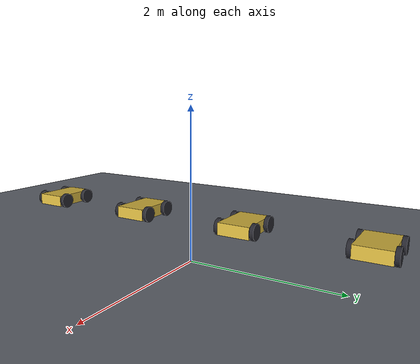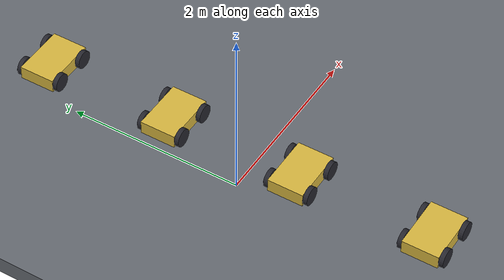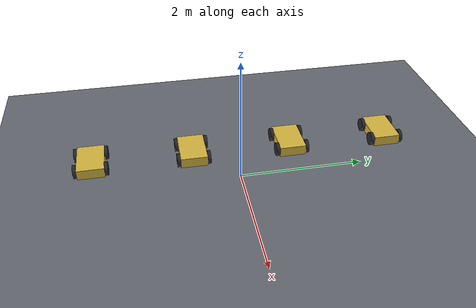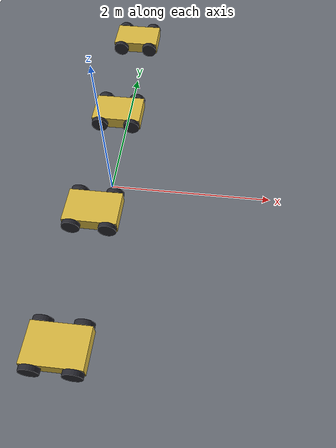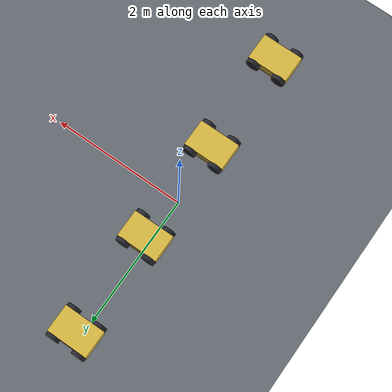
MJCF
<mujoco model="ladder0_rung11_mujoco">

  <!-- Only gravity and the timestep are set from the contract.  Everything
       else is MuJoCo's default, on purpose: this arm is the un-tuned
       reference for the solver OmniSim runs underneath. -->
  <option timestep="0.004" gravity="0 0 -9.81"/>

  <default>
    <!-- sliding / torsional / rolling.  condim defaults to 3, so only the
         first component is in force; the rest are declared for the record. -->
    <geom friction="1.0 0.005 0.0001"/>
  </default>

  <worldbody>
    <!-- Floor slab: full extents 25.200000000000003 x 7.5 x 0.2 m centred at z=0.4,
         so its top surface is at z=0.5.  Deliberately NOT at z=0. -->
    <geom name="floor" type="box" size="12.600000000000001 3.75 0.1" pos="0 0 0.4"
          rgba="0.4 0.42 0.45 1"/>

    <!-- r00: lane y = -2.250 m, commanded 2.0 rad/s -->
    <body name="r00_chassis" pos="0 -2.25 0.6">
      <freejoint name="r00_chassis_free"/>
      <geom name="r00_chassis_geom" type="box" size="0.3 0.2 0.075"
            mass="5.0" rgba="0.85 0.72 0.25 1"/>

      <body name="r00_fl" pos="0.2 0.225 0">
        <joint name="r00_fl_joint" type="hinge" axis="0 1 0"/>
        <geom name="r00_fl_geom" type="cylinder"
              fromto="0 -0.025 0  0 0.025 0" size="0.1" mass="0.5"
              rgba="0.15 0.15 0.18 1"/>
      </body>

      <body name="r00_fr" pos="0.2 -0.225 0">
        <joint name="r00_fr_joint" type="hinge" axis="0 1 0"/>
        <geom name="r00_fr_geom" type="cylinder"
              fromto="0 -0.025 0  0 0.025 0" size="0.1" mass="0.5"
              rgba="0.15 0.15 0.18 1"/>
      </body>

      <body name="r00_rl" pos="-0.2 0.225 0">
        <joint name="r00_rl_joint" type="hinge" axis="0 1 0"/>
        <geom name="r00_rl_geom" type="cylinder"
              fromto="0 -0.025 0  0 0.025 0" size="0.1" mass="0.5"
              rgba="0.15 0.15 0.18 1"/>
      </body>

      <body name="r00_rr" pos="-0.2 -0.225 0">
        <joint name="r00_rr_joint" type="hinge" axis="0 1 0"/>
        <geom name="r00_rr_geom" type="cylinder"
              fromto="0 -0.025 0  0 0.025 0" size="0.1" mass="0.5"
              rgba="0.15 0.15 0.18 1"/>
      </body>
    </body>

    <!-- r01: lane y = -0.750 m, commanded 3.0 rad/s -->
    <body name="r01_chassis" pos="0 -0.75 0.6">
      <freejoint name="r01_chassis_free"/>
      <geom name="r01_chassis_geom" type="box" size="0.3 0.2 0.075"
            mass="5.0" rgba="0.85 0.72 0.25 1"/>

      <body name="r01_fl" pos="0.2 0.225 0">
        <joint name="r01_fl_joint" type="hinge" axis="0 1 0"/>
        <geom name="r01_fl_geom" type="cylinder"
              fromto="0 -0.025 0  0 0.025 0" size="0.1" mass="0.5"
              rgba="0.15 0.15 0.18 1"/>
      </body>

      <body name="r01_fr" pos="0.2 -0.225 0">
        <joint name="r01_fr_joint" type="hinge" axis="0 1 0"/>
        <geom name="r01_fr_geom" type="cylinder"
              fromto="0 -0.025 0  0 0.025 0" size="0.1" mass="0.5"
              rgba="0.15 0.15 0.18 1"/>
      </body>

      <body name="r01_rl" pos="-0.2 0.225 0">
        <joint name="r01_rl_joint" type="hinge" axis="0 1 0"/>
        <geom name="r01_rl_geom" type="cylinder"
              fromto="0 -0.025 0  0 0.025 0" size="0.1" mass="0.5"
              rgba="0.15 0.15 0.18 1"/>
      </body>

      <body name="r01_rr" pos="-0.2 -0.225 0">
        <joint name="r01_rr_joint" type="hinge" axis="0 1 0"/>
        <geom name="r01_rr_geom" type="cylinder"
              fromto="0 -0.025 0  0 0.025 0" size="0.1" mass="0.5"
              rgba="0.15 0.15 0.18 1"/>
      </body>
    </body>

    <!-- r02: lane y = +0.750 m, commanded 4.0 rad/s -->
    <body name="r02_chassis" pos="0 0.75 0.6">
      <freejoint name="r02_chassis_free"/>
      <geom name="r02_chassis_geom" type="box" size="0.3 0.2 0.075"
            mass="5.0" rgba="0.85 0.72 0.25 1"/>

      <body name="r02_fl" pos="0.2 0.225 0">
        <joint name="r02_fl_joint" type="hinge" axis="0 1 0"/>
        <geom name="r02_fl_geom" type="cylinder"
              fromto="0 -0.025 0  0 0.025 0" size="0.1" mass="0.5"
              rgba="0.15 0.15 0.18 1"/>
      </body>

      <body name="r02_fr" pos="0.2 -0.225 0">
        <joint name="r02_fr_joint" type="hinge" axis="0 1 0"/>
        <geom name="r02_fr_geom" type="cylinder"
              fromto="0 -0.025 0  0 0.025 0" size="0.1" mass="0.5"
              rgba="0.15 0.15 0.18 1"/>
      </body>

      <body name="r02_rl" pos="-0.2 0.225 0">
        <joint name="r02_rl_joint" type="hinge" axis="0 1 0"/>
        <geom name="r02_rl_geom" type="cylinder"
              fromto="0 -0.025 0  0 0.025 0" size="0.1" mass="0.5"
              rgba="0.15 0.15 0.18 1"/>
      </body>

      <body name="r02_rr" pos="-0.2 -0.225 0">
        <joint name="r02_rr_joint" type="hinge" axis="0 1 0"/>
        <geom name="r02_rr_geom" type="cylinder"
              fromto="0 -0.025 0  0 0.025 0" size="0.1" mass="0.5"
              rgba="0.15 0.15 0.18 1"/>
      </body>
    </body>

    <!-- r03: lane y = +2.250 m, commanded 5.0 rad/s -->
    <body name="r03_chassis" pos="0 2.25 0.6">
      <freejoint name="r03_chassis_free"/>
      <geom name="r03_chassis_geom" type="box" size="0.3 0.2 0.075"
            mass="5.0" rgba="0.85 0.72 0.25 1"/>

      <body name="r03_fl" pos="0.2 0.225 0">
        <joint name="r03_fl_joint" type="hinge" axis="0 1 0"/>
        <geom name="r03_fl_geom" type="cylinder"
              fromto="0 -0.025 0  0 0.025 0" size="0.1" mass="0.5"
              rgba="0.15 0.15 0.18 1"/>
      </body>

      <body name="r03_fr" pos="0.2 -0.225 0">
        <joint name="r03_fr_joint" type="hinge" axis="0 1 0"/>
        <geom name="r03_fr_geom" type="cylinder"
              fromto="0 -0.025 0  0 0.025 0" size="0.1" mass="0.5"
              rgba="0.15 0.15 0.18 1"/>
      </body>

      <body name="r03_rl" pos="-0.2 0.225 0">
        <joint name="r03_rl_joint" type="hinge" axis="0 1 0"/>
        <geom name="r03_rl_geom" type="cylinder"
              fromto="0 -0.025 0  0 0.025 0" size="0.1" mass="0.5"
              rgba="0.15 0.15 0.18 1"/>
      </body>

      <body name="r03_rr" pos="-0.2 -0.225 0">
        <joint name="r03_rr_joint" type="hinge" axis="0 1 0"/>
        <geom name="r03_rr_geom" type="cylinder"
              fromto="0 -0.025 0  0 0.025 0" size="0.1" mass="0.5"
              rgba="0.15 0.15 0.18 1"/>
      </body>
    </body>
  </worldbody>

  <actuator>
    <!-- Deadbeat velocity servo: kv = I/dt = 0.625000, half the
         explicit-Euler stability bound 2I/dt, for a wheel's
         own I = m r^2 / 2 = 0.002500 kg m^2. -->
    <velocity name="r00_fl_motor" joint="r00_fl_joint" kv="0.625000"/>
    <velocity name="r00_fr_motor" joint="r00_fr_joint" kv="0.625000"/>
    <velocity name="r00_rl_motor" joint="r00_rl_joint" kv="0.625000"/>
    <velocity name="r00_rr_motor" joint="r00_rr_joint" kv="0.625000"/>
    <!-- Deadbeat velocity servo: kv = I/dt = 0.625000, half the
         explicit-Euler stability bound 2I/dt, for a wheel's
         own I = m r^2 / 2 = 0.002500 kg m^2. -->
    <velocity name="r01_fl_motor" joint="r01_fl_joint" kv="0.625000"/>
    <velocity name="r01_fr_motor" joint="r01_fr_joint" kv="0.625000"/>
    <velocity name="r01_rl_motor" joint="r01_rl_joint" kv="0.625000"/>
    <velocity name="r01_rr_motor" joint="r01_rr_joint" kv="0.625000"/>
    <!-- Deadbeat velocity servo: kv = I/dt = 0.625000, half the
         explicit-Euler stability bound 2I/dt, for a wheel's
         own I = m r^2 / 2 = 0.002500 kg m^2. -->
    <velocity name="r02_fl_motor" joint="r02_fl_joint" kv="0.625000"/>
    <velocity name="r02_fr_motor" joint="r02_fr_joint" kv="0.625000"/>
    <velocity name="r02_rl_motor" joint="r02_rl_joint" kv="0.625000"/>
    <velocity name="r02_rr_motor" joint="r02_rr_joint" kv="0.625000"/>
    <!-- Deadbeat velocity servo: kv = I/dt = 0.625000, half the
         explicit-Euler stability bound 2I/dt, for a wheel's
         own I = m r^2 / 2 = 0.002500 kg m^2. -->
    <velocity name="r03_fl_motor" joint="r03_fl_joint" kv="0.625000"/>
    <velocity name="r03_fr_motor" joint="r03_fr_joint" kv="0.625000"/>
    <velocity name="r03_rl_motor" joint="r03_rl_joint" kv="0.625000"/>
    <velocity name="r03_rr_motor" joint="r03_rr_joint" kv="0.625000"/>
  </actuator>

</mujoco>
